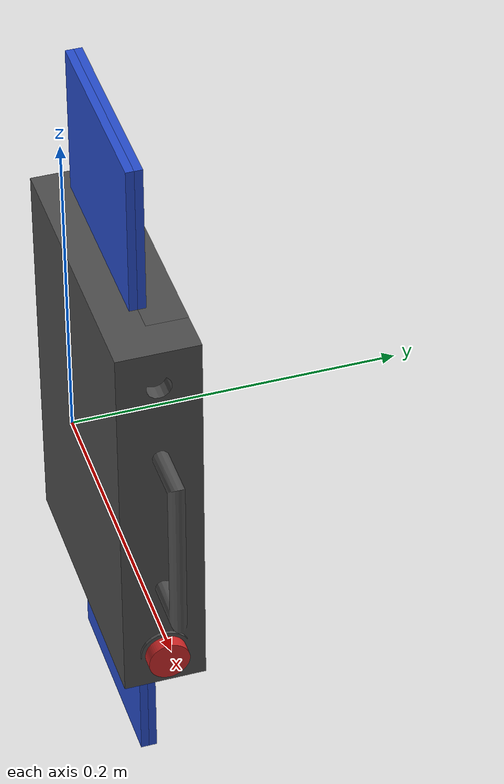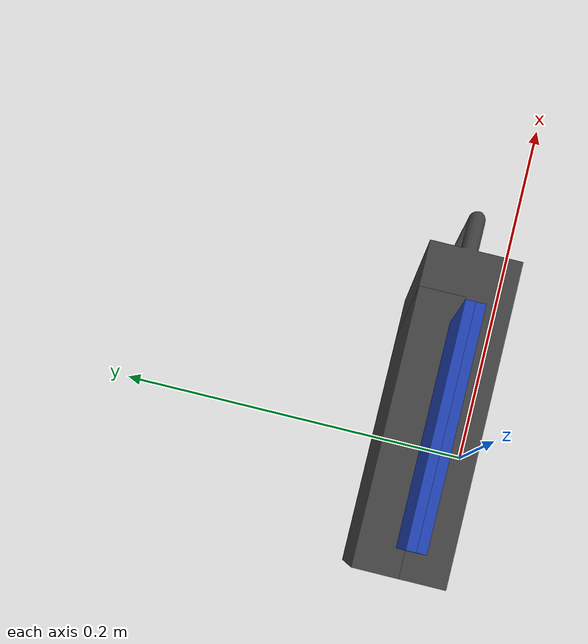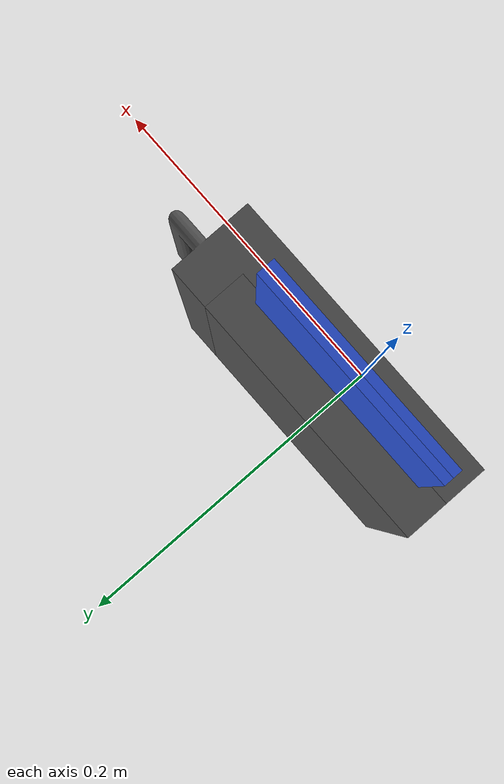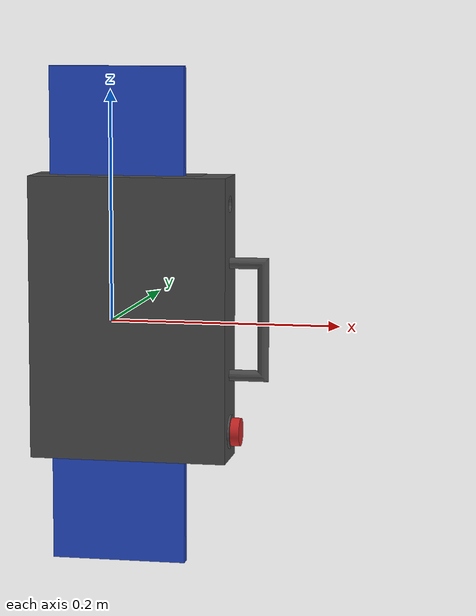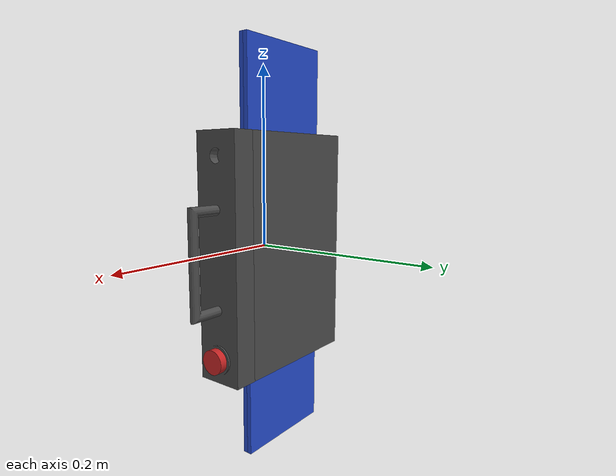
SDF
<?xml version="1.0"?>
<sdf version="1.7">
  <model name="solar_panel">
    <link name="base">
      <pose>0.0 0.0 0.0 0.0 0.0 0.0</pose>
      <inertial>
        <mass>0.5</mass>
        <inertia>
          <ixx>0.003</ixx>
          <ixy>0.0</ixy>
          <ixz>0.0</ixz>
          <iyy>0.005</iyy>
          <iyz>0.0</iyz>
          <izz>0.002</izz>
        </inertia>
      </inertial>
      <visual name="base_visual">
        <geometry>
          <mesh>
            <uri>model://solar_panel/meshes/briefcase_half_2.stl</uri>
            <scale>0.001 0.001 0.001</scale>
          </mesh>
        </geometry>
        <material>
          <script>
            <uri>file://media/materials/scripts/gazebo.material</uri>
            <name>Gazebo/DarkGrey</name>
          </script>
        </material>
      </visual>
      <collision name="base_collision">
        <geometry>
          <mesh>
            <uri>model://solar_panel/meshes/briefcase_half_2.stl</uri>
            <scale>0.001 0.001 0.001</scale>
          </mesh>
        </geometry>
      </collision>
    </link>

    <link name="lid">
      <pose>0.0 0.05 0.0 3.141592653 0.0 0.0</pose>
      <inertial>
        <mass>0.35</mass>
        <inertia>
          <ixx>0.002</ixx>
          <ixy>0.0</ixy>
          <ixz>0.0</ixz>
          <iyy>0.003</iyy>
          <iyz>0.0</iyz>
          <izz>0.001</izz>
        </inertia>
      </inertial>
      <visual name="lid_visual">
        <geometry>
          <mesh>
            <uri>model://solar_panel/meshes/briefcase_half_1.stl</uri>
            <scale>0.001 0.001 0.001</scale>
          </mesh>
        </geometry>
        <material>
          <script>
            <uri>file://media/materials/scripts/gazebo.material</uri>
            <name>Gazebo/DarkGrey</name>
          </script>
        </material>
      </visual>
      <collision name="lid_collision">
        <geometry>
          <mesh>
            <uri>model://solar_panel/meshes/briefcase_half_1.stl</uri>
            <scale>0.001 0.001 0.001</scale>
          </mesh>
        </geometry>
      </collision>
    </link>

    <link name="panel1">
      <pose>0.0 0.025 0.165 0.0 0.0 0.0</pose>
      <inertial>
        <mass>0.01</mass>
        <inertia>
          <ixx>0.002</ixx>
          <ixy>0.0</ixy>
          <ixz>0.0</ixz>
          <iyy>0.003</iyy>
          <iyz>0.0</iyz>
          <izz>0.001</izz>
        </inertia>
      </inertial>
      <visual name="panel1_visual">
        <geometry>
          <mesh>
            <uri>model://solar_panel/meshes/solar_panel.stl</uri>
            <scale>0.001 0.001 0.001</scale>
          </mesh>
        </geometry>
        <material>
          <script>
            <uri>file://media/materials/scripts/gazebo.material</uri>
            <name>Gazebo/Blue</name>
          </script>
        </material>
      </visual>
      <collision name="panel1_collision">
        <geometry>
          <mesh>
            <uri>model://solar_panel/meshes/solar_panel.stl</uri>
            <scale>0.001 0.001 0.001</scale>
          </mesh>
        </geometry>
      </collision>
    </link>

    <link name="panel2">
      <pose>0.0 0.025 -0.165 0.0 0.0 0.0</pose>
      <inertial>
        <mass>0.01</mass>
        <inertia>
          <ixx>0.002</ixx>
          <ixy>0.0</ixy>
          <ixz>0.0</ixz>
          <iyy>0.003</iyy>
          <iyz>0.0</iyz>
          <izz>0.001</izz>
        </inertia>
      </inertial>
      <visual name="panel2_visual">
        <geometry>
          <mesh>
            <uri>model://solar_panel/meshes/solar_panel.stl</uri>
            <scale>0.001 0.001 0.001</scale>
          </mesh>
        </geometry>
        <material>
          <script>
            <uri>file://media/materials/scripts/gazebo.material</uri>
            <name>Gazebo/Blue</name>
          </script>
        </material>
      </visual>
      <collision name="panel2_collision">
        <geometry>
          <mesh>
            <uri>model://solar_panel/meshes/solar_panel.stl</uri>
            <scale>0.001 0.001 0.001</scale>
          </mesh>
        </geometry>
      </collision>
    </link>

    <link name="panel3">
      <pose>0.0 0.02 0.165 0.0 0.0 0.0</pose>
      <inertial>
        <mass>0.01</mass>
        <inertia>
          <ixx>0.002</ixx>
          <ixy>0.0</ixy>
          <ixz>0.0</ixz>
          <iyy>0.003</iyy>
          <iyz>0.0</iyz>
          <izz>0.001</izz>
        </inertia>
      </inertial>
      <visual name="panel3_visual">
        <geometry>
          <mesh>
            <uri>model://solar_panel/meshes/solar_panel.stl</uri>
            <scale>0.001 0.001 0.001</scale>
          </mesh>
        </geometry>
        <material>
          <script>
            <uri>file://media/materials/scripts/gazebo.material</uri>
            <name>Gazebo/Blue</name>
          </script>
        </material>
      </visual>
      <collision name="panel3_collision">
        <geometry>
          <mesh>
            <uri>model://solar_panel/meshes/solar_panel.stl</uri>
            <scale>0.001 0.001 0.001</scale>
          </mesh>
        </geometry>
      </collision>
    </link>

    <link name="panel4">
      <pose>0.0 0.02 -0.165 0.0 0.0 0.0</pose>
      <inertial>
        <mass>0.01</mass>
        <inertia>
          <ixx>0.002</ixx>
          <ixy>0.0</ixy>
          <ixz>0.0</ixz>
          <iyy>0.003</iyy>
          <iyz>0.0</iyz>
          <izz>0.001</izz>
        </inertia>
      </inertial>
      <visual name="panel4_visual">
        <geometry>
          <mesh>
            <uri>model://solar_panel/meshes/solar_panel.stl</uri>
            <scale>0.001 0.001 0.001</scale>
          </mesh>
        </geometry>
        <material>
          <script>
            <uri>file://media/materials/scripts/gazebo.material</uri>
            <name>Gazebo/Blue</name>
          </script>
        </material>
      </visual>
      <collision name="panel4_collision">
        <geometry>
          <mesh>
            <uri>model://solar_panel/meshes/solar_panel.stl</uri>
            <scale>0.001 0.001 0.001</scale>
          </mesh>
        </geometry>
      </collision>
    </link>

    <link name="button">
      <pose>0.100 0.025 -0.100225 0.0 0.0 -1.570796326</pose>
      <inertial>
        <mass>0.01</mass>
        <inertia>
          <ixx>0.002</ixx>
          <ixy>0.0</ixy>
          <ixz>0.0</ixz>
          <iyy>0.003</iyy>
          <iyz>0.0</iyz>
          <izz>0.001</izz>
        </inertia>
      </inertial>
      <visual name="button_visual">
        <geometry>
          <mesh>
            <uri>model://solar_panel/meshes/button.stl</uri>
            <scale>0.001 0.001 0.001</scale>
          </mesh>
        </geometry>
        <material>
          <script>
            <uri>file://media/materials/scripts/gazebo.material</uri>
            <name>Gazebo/Red</name>
          </script>
        </material>
      </visual>
      <collision name="button_collision">
        <geometry>
          <mesh>
            <uri>model://solar_panel/meshes/button.stl</uri>
            <scale>0.001 0.001 0.001</scale>
          </mesh>
        </geometry>
      </collision>
    </link>
    <joint name="lid_hinge" type="revolute">
      <parent>base</parent>
      <child>lid</child>
      <pose>-0.075 0.025 0.0 0.0 0.0 0.0</pose>
      <axis>
      	<xyz>0.0 0.0 -1.0</xyz>
      	<limit>
      	  <lower>0.0</lower>
      	  <upper>3.141592653</upper>
      	</limit>
      </axis>
    </joint>

    <joint name="panel1_hinge" type="revolute">
      <parent>base</parent>
      <child>panel1</child>
      <pose>0.0 0.0 -0.055 0.0 0.0 0.0</pose>
      <axis>
      	<xyz>-1.0 0.0 0.0</xyz>
      	<limit>
      	  <lower>0.0</lower>
      	  <upper>3.141592653</upper>
      	</limit>
      </axis>
    </joint>

    <joint name="panel2_hinge" type="revolute">
      <parent>base</parent>
      <child>panel2</child>
      <pose>0.0 0.0 0.055 0.0 0.0 0.0</pose>
      <axis>
      	<xyz>1.0 0.0 0.0</xyz>
      	<limit>
      	  <lower>0.0</lower>
      	  <upper>3.141592653</upper>
      	</limit>
      </axis>
    </joint>

    <joint name="panel3_hinge" type="revolute">
      <parent>lid</parent>
      <child>panel3</child>
      <pose>0.0 0.005 -0.055 0.0 0.0 0.0</pose>
      <axis>
      	<xyz>1.0 0.0 0.0</xyz>
      	<limit>
      	  <lower>0.0</lower>
      	  <upper>3.141592653</upper>
      	</limit>
      </axis>
    </joint>

    <joint name="panel4_hinge" type="revolute">
      <parent>lid</parent>
      <child>panel4</child>
      <pose>0.0 0.005 0.055 0.0 0.0 0.0</pose>
      <axis>
      	<xyz>-1.0 0.0 0.0</xyz>
      	<limit>
      	  <lower>0.0</lower>
      	  <upper>3.141592653</upper>
      	</limit>
      </axis>
    </joint>

    <joint name="button_push" type="prismatic">
      <parent>base</parent>
      <child>button</child>
      <pose>0.0 0.0 0.0 0.0 0.0 0.0</pose>
      <axis>
      	<xyz>0.0 -1.0 0.0</xyz>
      	<limit>
      	  <lower>-0.0001</lower>
      	  <upper>0.003</upper>
      	</limit>
      </axis>
    </joint>

  </model>
</sdf>
